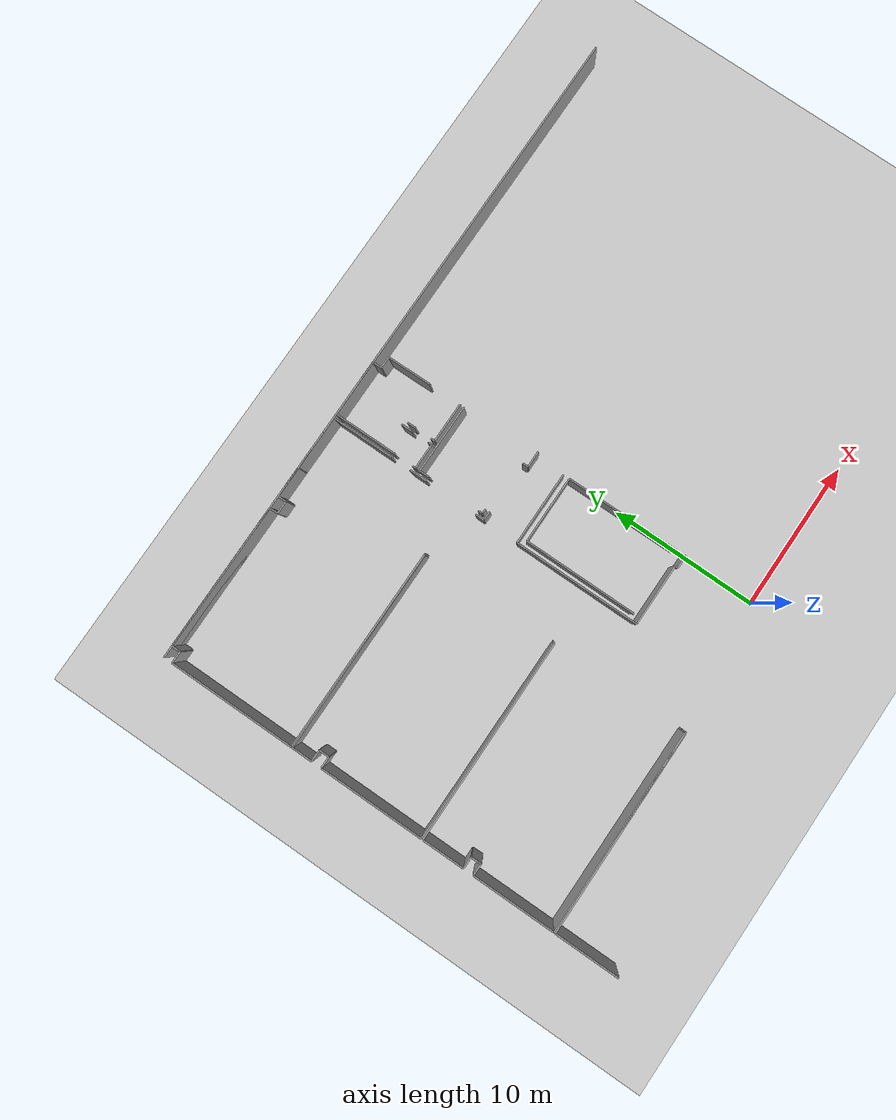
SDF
<sdf version="1.6">
 <world name="default">
  <model name="ground_plane">
   <static>1</static>
   <link name="link">
    <collision name="collision">
     <geometry><plane><normal>0 0 1</normal><size>100 100</size></plane></geometry>
     <surface><friction><ode><mu>100</mu><mu2>50</mu2></ode></friction></surface>
    </collision>
    <visual name="visual">
     <cast_shadows>0</cast_shadows>
     <geometry><plane><normal>0 0 1</normal><size>100 100</size></plane></geometry>
     <material>
      <script><uri>file://media/materials/scripts/gazebo.material</uri><name>Gazebo/Grey</name></script>
     </material>
    </visual>
   </link>
  </model>
  <model name="0510032322">
   <static>1</static>
   <link name="Wall_0">
    <collision name="Wall_0_Collision">
     <geometry><box><size>2.06761739749 0.1 2.5</size></box></geometry>
     <pose>1.03380869874 0 1.25 0 0 0</pose>
    </collision>
    <visual name="Wall_0_Visual">
     <pose>1.03380869874 0 1.25 0 0 0</pose>
     <geometry><box><size>2.06761739749 0.1 2.5</size></box></geometry>
     <material>
      <script><uri>file://media/materials/scripts/gazebo.material</uri><name>Gazebo/Grey</name></script>
      <ambient>1 1 1 1</ambient>
     </material>
    </visual>
    <pose>13.6567595184 -0.00964693487685 0 0 0 3.14159265359</pose>
   </link>
   <link name="Wall_1">
    <collision name="Wall_1_Collision">
     <geometry><box><size>0.5662496906 0.1 2.5</size></box></geometry>
     <pose>0.2831248453 0 1.25 0 0 0</pose>
    </collision>
    <visual name="Wall_1_Visual">
     <pose>0.2831248453 0 1.25 0 0 0</pose>
     <geometry><box><size>0.5662496906 0.1 2.5</size></box></geometry>
     <material>
      <script><uri>file://media/materials/scripts/gazebo.material</uri><name>Gazebo/Grey</name></script>
      <ambient>1 1 1 1</ambient>
     </material>
    </visual>
    <pose>11.5891421209 -0.00964693487685 0 0 0 -1.57079632679</pose>
   </link>
   <link name="Wall_2">
    <collision name="Wall_2_Collision">
     <geometry><box><size>0.859719604222 0.1 2.5</size></box></geometry>
     <pose>0.429859802111 0 1.25 0 0 0</pose>
    </collision>
    <visual name="Wall_2_Visual">
     <pose>0.429859802111 0 1.25 0 0 0</pose>
     <geometry><box><size>0.859719604222 0.1 2.5</size></box></geometry>
     <material>
      <script><uri>file://media/materials/scripts/gazebo.material</uri><name>Gazebo/Grey</name></script>
      <ambient>1 1 1 1</ambient>
     </material>
    </visual>
    <pose>11.5891421209 -0.575896625477 0 0 0 3.14159265359</pose>
   </link>
   <link name="Wall_3">
    <collision name="Wall_3_Collision">
     <geometry><box><size>0.575896625477 0.1 2.5</size></box></geometry>
     <pose>0.287948312738 0 1.25 0 0 0</pose>
    </collision>
    <visual name="Wall_3_Visual">
     <pose>0.287948312738 0 1.25 0 0 0</pose>
     <geometry><box><size>0.575896625477 0.1 2.5</size></box></geometry>
     <material>
      <script><uri>file://media/materials/scripts/gazebo.material</uri><name>Gazebo/Grey</name></script>
      <ambient>1 1 1 1</ambient>
     </material>
    </visual>
    <pose>10.7294225167 -0.575896625477 0 0 0 1.57079632679</pose>
   </link>
   <link name="Wall_4">
    <collision name="Wall_4_Collision">
     <geometry><box><size>9.91514505309 0.1 2.5</size></box></geometry>
     <pose>4.95757252654 0 1.25 0 0 0</pose>
    </collision>
    <visual name="Wall_4_Visual">
     <pose>4.95757252654 0 1.25 0 0 0</pose>
     <geometry><box><size>9.91514505309 0.1 2.5</size></box></geometry>
     <material>
      <script><uri>file://media/materials/scripts/gazebo.material</uri><name>Gazebo/Grey</name></script>
      <ambient>1 1 1 1</ambient>
     </material>
    </visual>
    <pose>10.7294225167 -0.0 0 0 0 3.14159265359</pose>
   </link>
   <link name="Wall_5">
    <collision name="Wall_5_Collision">
     <geometry><box><size>0.592651828158 0.1 2.5</size></box></geometry>
     <pose>0.296325914079 0 1.25 0 0 0</pose>
    </collision>
    <visual name="Wall_5_Visual">
     <pose>0.296325914079 0 1.25 0 0 0</pose>
     <geometry><box><size>0.592651828158 0.1 2.5</size></box></geometry>
     <material>
      <script><uri>file://media/materials/scripts/gazebo.material</uri><name>Gazebo/Grey</name></script>
      <ambient>1 1 1 1</ambient>
     </material>
    </visual>
    <pose>0.814277463618 -0.0 0 0 0 -1.57079632679</pose>
   </link>
   <link name="Wall_6">
    <collision name="Wall_6_Collision">
     <geometry><box><size>0.799680127949 0.1 2.5</size></box></geometry>
     <pose>0.399840063974 0 1.25 0 0 0</pose>
    </collision>
    <visual name="Wall_6_Visual">
     <pose>0.399840063974 0 1.25 0 0 0</pose>
     <geometry><box><size>0.799680127949 0.1 2.5</size></box></geometry>
     <material>
      <script><uri>file://media/materials/scripts/gazebo.material</uri><name>Gazebo/Grey</name></script>
      <ambient>1 1 1 1</ambient>
     </material>
    </visual>
    <pose>0.814277463618 -0.592651828158 0 0 0 3.14159265359</pose>
   </link>
   <link name="Wall_7">
    <collision name="Wall_7_Collision">
     <geometry><box><size>8.6489848505 0.1 2.5</size></box></geometry>
     <pose>4.32449242525 0 1.25 0 0 0</pose>
    </collision>
    <visual name="Wall_7_Visual">
     <pose>4.32449242525 0 1.25 0 0 0</pose>
     <geometry><box><size>8.6489848505 0.1 2.5</size></box></geometry>
     <material>
      <script><uri>file://media/materials/scripts/gazebo.material</uri><name>Gazebo/Grey</name></script>
      <ambient>1 1 1 1</ambient>
     </material>
    </visual>
    <pose>0.0145973356689 -0.592651828158 0 0 0 -1.57079632679</pose>
   </link>
   <link name="Wall_8">
    <collision name="Wall_8_Collision">
     <geometry><box><size>13.6421790487 0.1 2.5</size></box></geometry>
     <pose>6.82108952436 0 1.25 0 0 0</pose>
    </collision>
    <visual name="Wall_8_Visual">
     <pose>6.82108952436 0 1.25 0 0 0</pose>
     <geometry><box><size>13.6421790487 0.1 2.5</size></box></geometry>
     <material>
      <script><uri>file://media/materials/scripts/gazebo.material</uri><name>Gazebo/Grey</name></script>
      <ambient>1 1 1 1</ambient>
     </material>
    </visual>
    <pose>0.0145973356689 -9.24163667866 0 0 0 -0.0015724574153</pose>
   </link>
   <link name="Wall_9">
    <collision name="Wall_9_Collision">
     <geometry><box><size>13.6278187138 0.1 2.5</size></box></geometry>
     <pose>6.81390935689 0 1.25 0 0 0</pose>
    </collision>
    <visual name="Wall_9_Visual">
     <pose>6.81390935689 0 1.25 0 0 0</pose>
     <geometry><box><size>13.6278187138 0.1 2.5</size></box></geometry>
     <material>
      <script><uri>file://media/materials/scripts/gazebo.material</uri><name>Gazebo/Grey</name></script>
      <ambient>1 1 1 1</ambient>
     </material>
    </visual>
    <pose>13.6424160495 -9.29507562055 0 0 0 3.14159265359</pose>
   </link>
   <link name="Wall_10">
    <collision name="Wall_10_Collision">
     <geometry><box><size>1.4079447586 0.1 2.5</size></box></geometry>
     <pose>0.703972379302 0 1.25 0 0 0</pose>
    </collision>
    <visual name="Wall_10_Visual">
     <pose>0.703972379302 0 1.25 0 0 0</pose>
     <geometry><box><size>1.4079447586 0.1 2.5</size></box></geometry>
     <material>
      <script><uri>file://media/materials/scripts/gazebo.material</uri><name>Gazebo/Grey</name></script>
      <ambient>1 1 1 1</ambient>
     </material>
    </visual>
    <pose>0.0145973356689 -9.29507562055 0 0 0 -1.57079632679</pose>
   </link>
   <link name="Wall_11">
    <collision name="Wall_11_Collision">
     <geometry><box><size>0.779116924659 0.1 2.5</size></box></geometry>
     <pose>0.389558462329 0 1.25 0 0 0</pose>
    </collision>
    <visual name="Wall_11_Visual">
     <pose>0.389558462329 0 1.25 0 0 0</pose>
     <geometry><box><size>0.779116924659 0.1 2.5</size></box></geometry>
     <material>
      <script><uri>file://media/materials/scripts/gazebo.material</uri><name>Gazebo/Grey</name></script>
      <ambient>1 1 1 1</ambient>
     </material>
    </visual>
    <pose>0.0145973356689 -10.7030203791 0 0 0 0.0</pose>
   </link>
   <link name="Wall_12">
    <collision name="Wall_12_Collision">
     <geometry><box><size>0.682393709183 0.1 2.5</size></box></geometry>
     <pose>0.341196854591 0 1.25 0 0 0</pose>
    </collision>
    <visual name="Wall_12_Visual">
     <pose>0.341196854591 0 1.25 0 0 0</pose>
     <geometry><box><size>0.682393709183 0.1 2.5</size></box></geometry>
     <material>
      <script><uri>file://media/materials/scripts/gazebo.material</uri><name>Gazebo/Grey</name></script>
      <ambient>1 1 1 1</ambient>
     </material>
    </visual>
    <pose>0.793714260328 -10.7030203791 0 0 0 -1.57079632679</pose>
   </link>
   <link name="Wall_13">
    <collision name="Wall_13_Collision">
     <geometry><box><size>0.782544125207 0.1 2.5</size></box></geometry>
     <pose>0.391272062604 0 1.25 0 0 0</pose>
    </collision>
    <visual name="Wall_13_Visual">
     <pose>0.391272062604 0 1.25 0 0 0</pose>
     <geometry><box><size>0.782544125207 0.1 2.5</size></box></geometry>
     <material>
      <script><uri>file://media/materials/scripts/gazebo.material</uri><name>Gazebo/Grey</name></script>
      <ambient>1 1 1 1</ambient>
     </material>
    </visual>
    <pose>0.793714260328 -11.3854140883 0 0 0 3.14159265359</pose>
   </link>
   <link name="Wall_14">
    <collision name="Wall_14_Collision">
     <geometry><box><size>7.13923954228 0.1 2.5</size></box></geometry>
     <pose>3.56961977114 0 1.25 0 0 0</pose>
    </collision>
    <visual name="Wall_14_Visual">
     <pose>3.56961977114 0 1.25 0 0 0</pose>
     <geometry><box><size>7.13923954228 0.1 2.5</size></box></geometry>
     <material>
      <script><uri>file://media/materials/scripts/gazebo.material</uri><name>Gazebo/Grey</name></script>
      <ambient>1 1 1 1</ambient>
     </material>
    </visual>
    <pose>0.0111701351206 -11.3854140883 0 0 0 -1.57079632679</pose>
   </link>
   <link name="Wall_15">
    <collision name="Wall_15_Collision">
     <geometry><box><size>13.6312729796 0.1 2.5</size></box></geometry>
     <pose>6.81563648982 0 1.25 0 0 0</pose>
    </collision>
    <visual name="Wall_15_Visual">
     <pose>6.81563648982 0 1.25 0 0 0</pose>
     <geometry><box><size>13.6312729796 0.1 2.5</size></box></geometry>
     <material>
      <script><uri>file://media/materials/scripts/gazebo.material</uri><name>Gazebo/Grey</name></script>
      <ambient>1 1 1 1</ambient>
     </material>
    </visual>
    <pose>0.0111701351206 -18.5246536306 0 0 0 -0.00199275267235</pose>
   </link>
   <link name="Wall_16">
    <collision name="Wall_16_Collision">
     <geometry><box><size>13.6482549837 0.1 2.5</size></box></geometry>
     <pose>6.82412749186 0 1.25 0 0 0</pose>
    </collision>
    <visual name="Wall_16_Visual">
     <pose>6.82412749186 0 1.25 0 0 0</pose>
     <geometry><box><size>13.6482549837 0.1 2.5</size></box></geometry>
     <material>
      <script><uri>file://media/materials/scripts/gazebo.material</uri><name>Gazebo/Grey</name></script>
      <ambient>1 1 1 1</ambient>
     </material>
    </visual>
    <pose>13.6576480519 -18.6180765789 0 0 0 3.14159265359</pose>
   </link>
   <link name="Wall_17">
    <collision name="Wall_17_Collision">
     <geometry><box><size>2.87415192653 0.1 2.5</size></box></geometry>
     <pose>1.43707596327 0 1.25 0 0 0</pose>
    </collision>
    <visual name="Wall_17_Visual">
     <pose>1.43707596327 0 1.25 0 0 0</pose>
     <geometry><box><size>2.87415192653 0.1 2.5</size></box></geometry>
     <material>
      <script><uri>file://media/materials/scripts/gazebo.material</uri><name>Gazebo/Grey</name></script>
      <ambient>1 1 1 1</ambient>
     </material>
    </visual>
    <pose>0.00939306816956 -18.6180765789 0 0 0 -1.57079632679</pose>
   </link>
   <link name="Wall_18">
    <collision name="Wall_18_Collision">
     <geometry><box><size>0.779624658073 0.1 2.5</size></box></geometry>
     <pose>0.389812329037 0 1.25 0 0 0</pose>
    </collision>
    <visual name="Wall_18_Visual">
     <pose>0.389812329037 0 1.25 0 0 0</pose>
     <geometry><box><size>0.779624658073 0.1 2.5</size></box></geometry>
     <material>
      <script><uri>file://media/materials/scripts/gazebo.material</uri><name>Gazebo/Grey</name></script>
      <ambient>1 1 1 1</ambient>
     </material>
    </visual>
    <pose>0.00939306816956 -21.4922285054 0 0 0 0.0</pose>
   </link>
   <link name="Wall_19">
    <collision name="Wall_19_Collision">
     <geometry><box><size>0.691913710706 0.1 2.5</size></box></geometry>
     <pose>0.345956855353 0 1.25 0 0 0</pose>
    </collision>
    <visual name="Wall_19_Visual">
     <pose>0.345956855353 0 1.25 0 0 0</pose>
     <geometry><box><size>0.691913710706 0.1 2.5</size></box></geometry>
     <material>
      <script><uri>file://media/materials/scripts/gazebo.material</uri><name>Gazebo/Grey</name></script>
      <ambient>1 1 1 1</ambient>
     </material>
    </visual>
    <pose>0.789017726243 -21.4922285054 0 0 0 -1.57079632679</pose>
   </link>
   <link name="Wall_20">
    <collision name="Wall_20_Collision">
     <geometry><box><size>0.782671058561 0.1 2.5</size></box></geometry>
     <pose>0.39133552928 0 1.25 0 0 0</pose>
    </collision>
    <visual name="Wall_20_Visual">
     <pose>0.39133552928 0 1.25 0 0 0</pose>
     <geometry><box><size>0.782671058561 0.1 2.5</size></box></geometry>
     <material>
      <script><uri>file://media/materials/scripts/gazebo.material</uri><name>Gazebo/Grey</name></script>
      <ambient>1 1 1 1</ambient>
     </material>
    </visual>
    <pose>0.789017726243 -22.1841422161 0 0 0 3.14159265359</pose>
   </link>
   <link name="Wall_21">
    <collision name="Wall_21_Collision">
     <geometry><box><size>5.64041050247 0.1 2.5</size></box></geometry>
     <pose>2.82020525123 0 1.25 0 0 0</pose>
    </collision>
    <visual name="Wall_21_Visual">
     <pose>2.82020525123 0 1.25 0 0 0</pose>
     <geometry><box><size>5.64041050247 0.1 2.5</size></box></geometry>
     <material>
      <script><uri>file://media/materials/scripts/gazebo.material</uri><name>Gazebo/Grey</name></script>
      <ambient>1 1 1 1</ambient>
     </material>
    </visual>
    <pose>0.00634666768213 -22.1841422161 0 0 0 -1.57079632679</pose>
   </link>
   <link name="Wall_22">
    <collision name="Wall_22_Collision">
     <geometry><box><size>13.6513412769 0.1 2.5</size></box></geometry>
     <pose>6.82567063846 0 1.25 0 0 0</pose>
    </collision>
    <visual name="Wall_22_Visual">
     <pose>6.82567063846 0 1.25 0 0 0</pose>
     <geometry><box><size>13.6513412769 0.1 2.5</size></box></geometry>
     <material>
      <script><uri>file://media/materials/scripts/gazebo.material</uri><name>Gazebo/Grey</name></script>
      <ambient>1 1 1 1</ambient>
     </material>
    </visual>
    <pose>0.00634666768213 -27.8245527186 0 0 0 -0.00241754296703</pose>
   </link>
   <link name="Wall_23">
    <collision name="Wall_23_Collision">
     <geometry><box><size>13.6599328523 0.1 2.5</size></box></geometry>
     <pose>6.82996642613 0 1.25 0 0 0</pose>
    </collision>
    <visual name="Wall_23_Visual">
     <pose>6.82996642613 0 1.25 0 0 0</pose>
     <geometry><box><size>13.6599328523 0.1 2.5</size></box></geometry>
     <material>
      <script><uri>file://media/materials/scripts/gazebo.material</uri><name>Gazebo/Grey</name></script>
      <ambient>1 1 1 1</ambient>
     </material>
    </visual>
    <pose>13.6599328523 -27.9007127308 0 0 0 3.14159265359</pose>
   </link>
   <link name="Wall_24">
    <collision name="Wall_24_Collision">
     <geometry><box><size>4.39862150378 0.1 2.5</size></box></geometry>
     <pose>2.19931075189 0 1.25 0 0 0</pose>
    </collision>
    <visual name="Wall_24_Visual">
     <pose>2.19931075189 0 1.25 0 0 0</pose>
     <geometry><box><size>4.39862150378 0.1 2.5</size></box></geometry>
     <material>
      <script><uri>file://media/materials/scripts/gazebo.material</uri><name>Gazebo/Grey</name></script>
      <ambient>1 1 1 1</ambient>
     </material>
    </visual>
    <pose>0.0 -27.9007127308 0 0 0 -1.57079632679</pose>
   </link>
   <link name="Wall_57">
    <collision name="Wall_57_Collision">
     <geometry><box><size>8.56432030362 0.1 2.5</size></box></geometry>
     <pose>4.28216015181 0 1.25 0 0 0</pose>
    </collision>
    <visual name="Wall_57_Visual">
     <pose>4.28216015181 0 1.25 0 0 0</pose>
     <geometry><box><size>8.56432030362 0.1 2.5</size></box></geometry>
     <material>
      <script><uri>file://media/materials/scripts/gazebo.material</uri><name>Gazebo/Grey</name></script>
      <ambient>1 1 1 1</ambient>
     </material>
    </visual>
    <pose>17.3497585093 -22.0097357882 0 0 0 1.57079632679</pose>
   </link>
   <link name="Wall_58">
    <collision name="Wall_58_Collision">
     <geometry><box><size>0.60737609718 0.1 2.5</size></box></geometry>
     <pose>0.30368804859 0 1.25 0 0 0</pose>
    </collision>
    <visual name="Wall_58_Visual">
     <pose>0.30368804859 0 1.25 0 0 0</pose>
     <geometry><box><size>0.60737609718 0.1 2.5</size></box></geometry>
     <material>
      <script><uri>file://media/materials/scripts/gazebo.material</uri><name>Gazebo/Grey</name></script>
      <ambient>1 1 1 1</ambient>
     </material>
    </visual>
    <pose>17.3497585093 -11.0284774979 0 0 0 1.57079632679</pose>
   </link>
   <link name="Wall_59">
    <collision name="Wall_59_Collision">
     <geometry><box><size>1.20523219284 0.1 2.5</size></box></geometry>
     <pose>0.602616096419 0 1.25 0 0 0</pose>
    </collision>
    <visual name="Wall_59_Visual">
     <pose>0.602616096419 0 1.25 0 0 0</pose>
     <geometry><box><size>1.20523219284 0.1 2.5</size></box></geometry>
     <material>
      <script><uri>file://media/materials/scripts/gazebo.material</uri><name>Gazebo/Grey</name></script>
      <ambient>1 1 1 1</ambient>
     </material>
    </visual>
    <pose>17.3497585093 -6.83929602762 0 0 0 1.57079632679</pose>
   </link>
   <link name="Wall_60">
    <collision name="Wall_60_Collision">
     <geometry><box><size>4.25353668057 0.1 2.5</size></box></geometry>
     <pose>2.12676834028 0 1.25 0 0 0</pose>
    </collision>
    <visual name="Wall_60_Visual">
     <pose>2.12676834028 0 1.25 0 0 0</pose>
     <geometry><box><size>4.25353668057 0.1 2.5</size></box></geometry>
     <material>
      <script><uri>file://media/materials/scripts/gazebo.material</uri><name>Gazebo/Grey</name></script>
      <ambient>1 1 1 1</ambient>
     </material>
    </visual>
    <pose>17.3497585093 -4.26026414831 0 0 0 1.57079632679</pose>
   </link>
   <link name="Wall_61">
    <collision name="Wall_61_Collision">
     <geometry><box><size>3.64806458369 0.1 2.5</size></box></geometry>
     <pose>1.82403229185 0 1.25 0 0 0</pose>
    </collision>
    <visual name="Wall_61_Visual">
     <pose>1.82403229185 0 1.25 0 0 0</pose>
     <geometry><box><size>3.64806458369 0.1 2.5</size></box></geometry>
     <material>
      <script><uri>file://media/materials/scripts/gazebo.material</uri><name>Gazebo/Grey</name></script>
      <ambient>1 1 1 1</ambient>
     </material>
    </visual>
    <pose>17.3497585093 -0.00672746774306 0 0 0 3.14159265359</pose>
   </link>
   <link name="Wall_62">
    <collision name="Wall_62_Collision">
     <geometry><box><size>0.0757792121247 0.1 2.5</size></box></geometry>
     <pose>0.0378896060623 0 1.25 0 0 0</pose>
    </collision>
    <visual name="Wall_62_Visual">
     <pose>0.0378896060623 0 1.25 0 0 0</pose>
     <geometry><box><size>0.0757792121247 0.1 2.5</size></box></geometry>
     <material>
      <script><uri>file://media/materials/scripts/gazebo.material</uri><name>Gazebo/Grey</name></script>
      <ambient>1 1 1 1</ambient>
     </material>
    </visual>
    <pose>13.7016939256 -9.23313214397 0 0 0 -1.57079632679</pose>
   </link>
   <link name="Wall_63">
    <collision name="Wall_63_Collision">
     <geometry><box><size>0.0943114817565 0.1 2.5</size></box></geometry>
     <pose>0.0471557408783 0 1.25 0 0 0</pose>
    </collision>
    <visual name="Wall_63_Visual">
     <pose>0.0471557408783 0 1.25 0 0 0</pose>
     <geometry><box><size>0.0943114817565 0.1 2.5</size></box></geometry>
     <material>
      <script><uri>file://media/materials/scripts/gazebo.material</uri><name>Gazebo/Grey</name></script>
      <ambient>1 1 1 1</ambient>
     </material>
    </visual>
    <pose>13.7016939256 -18.5240189638 0 0 0 -1.57079632679</pose>
   </link>
   <link name="Wall_64">
    <collision name="Wall_64_Collision">
     <geometry><box><size>0.0882186807817 0.1 2.5</size></box></geometry>
     <pose>0.0441093403908 0 1.25 0 0 0</pose>
    </collision>
    <visual name="Wall_64_Visual">
     <pose>0.0441093403908 0 1.25 0 0 0</pose>
     <geometry><box><size>0.0882186807817 0.1 2.5</size></box></geometry>
     <material>
      <script><uri>file://media/materials/scripts/gazebo.material</uri><name>Gazebo/Grey</name></script>
      <ambient>1 1 1 1</ambient>
     </material>
    </visual>
    <pose>13.7016939256 -27.8235372518 0 0 0 -1.57079632679</pose>
   </link>
   <link name="Wall_66">
    <collision name="Wall_66_Collision">
     <geometry><box><size>0.778355324537 0.1 2.5</size></box></geometry>
     <pose>0.389177662268 0 1.25 0 0 0</pose>
    </collision>
    <visual name="Wall_66_Visual">
     <pose>0.389177662268 0 1.25 0 0 0</pose>
     <geometry><box><size>0.778355324537 0.1 2.5</size></box></geometry>
     <material>
      <script><uri>file://media/materials/scripts/gazebo.material</uri><name>Gazebo/Grey</name></script>
      <ambient>1 1 1 1</ambient>
     </material>
    </visual>
    <pose>19.3410889612 -3.62267791296 0 0 0 -1.57079632679</pose>
   </link>
   <link name="Wall_67">
    <collision name="Wall_67_Collision">
     <geometry><box><size>0.274429910575 0.1 2.5</size></box></geometry>
     <pose>0.137214955288 0 1.25 0 0 0</pose>
    </collision>
    <visual name="Wall_67_Visual">
     <pose>0.137214955288 0 1.25 0 0 0</pose>
     <geometry><box><size>0.274429910575 0.1 2.5</size></box></geometry>
     <material>
      <script><uri>file://media/materials/scripts/gazebo.material</uri><name>Gazebo/Grey</name></script>
      <ambient>1 1 1 1</ambient>
     </material>
    </visual>
    <pose>19.3410889612 -5.56818542424 0 0 0 -1.57079632679</pose>
   </link>
   <link name="Wall_68">
    <collision name="Wall_68_Collision">
     <geometry><box><size>1.71334640747 0.1 2.5</size></box></geometry>
     <pose>0.856673203734 0 1.25 0 0 0</pose>
    </collision>
    <visual name="Wall_68_Visual">
     <pose>0.856673203734 0 1.25 0 0 0</pose>
     <geometry><box><size>1.71334640747 0.1 2.5</size></box></geometry>
     <material>
      <script><uri>file://media/materials/scripts/gazebo.material</uri><name>Gazebo/Grey</name></script>
      <ambient>1 1 1 1</ambient>
     </material>
    </visual>
    <pose>19.3410889612 -5.84261533482 0 0 0 3.14159265359</pose>
   </link>
   <link name="Wall_69">
    <collision name="Wall_69_Collision">
     <geometry><box><size>0.227464569728 0.1 2.5</size></box></geometry>
     <pose>0.113732284864 0 1.25 0 0 0</pose>
    </collision>
    <visual name="Wall_69_Visual">
     <pose>0.113732284864 0 1.25 0 0 0</pose>
     <geometry><box><size>0.227464569728 0.1 2.5</size></box></geometry>
     <material>
      <script><uri>file://media/materials/scripts/gazebo.material</uri><name>Gazebo/Grey</name></script>
      <ambient>1 1 1 1</ambient>
     </material>
    </visual>
    <pose>17.6277425538 -5.84261533482 0 0 0 1.57079632679</pose>
   </link>
   <link name="Wall_70">
    <collision name="Wall_70_Collision">
     <geometry><box><size>4.25099801349 0.1 2.5</size></box></geometry>
     <pose>2.12549900675 0 1.25 0 0 0</pose>
    </collision>
    <visual name="Wall_70_Visual">
     <pose>2.12549900675 0 1.25 0 0 0</pose>
     <geometry><box><size>4.25099801349 0.1 2.5</size></box></geometry>
     <material>
      <script><uri>file://media/materials/scripts/gazebo.material</uri><name>Gazebo/Grey</name></script>
      <ambient>1 1 1 1</ambient>
     </material>
    </visual>
    <pose>17.6277425538 -4.26026414831 0 0 0 1.57079632679</pose>
   </link>
   <link name="Wall_71">
    <collision name="Wall_71_Collision">
     <geometry><box><size>3.87083261933 0.1 2.5</size></box></geometry>
     <pose>1.93541630967 0 1.25 0 0 0</pose>
    </collision>
    <visual name="Wall_71_Visual">
     <pose>1.93541630967 0 1.25 0 0 0</pose>
     <geometry><box><size>3.87083261933 0.1 2.5</size></box></geometry>
     <material>
      <script><uri>file://media/materials/scripts/gazebo.material</uri><name>Gazebo/Grey</name></script>
      <ambient>1 1 1 1</ambient>
     </material>
    </visual>
    <pose>17.6277425538 -0.00926613481592 0 0 0 0.0</pose>
   </link>
   <link name="Wall_72">
    <collision name="Wall_72_Collision">
     <geometry><box><size>0.595952095352 0.1 2.5</size></box></geometry>
     <pose>0.297976047676 0 1.25 0 0 0</pose>
    </collision>
    <visual name="Wall_72_Visual">
     <pose>0.297976047676 0 1.25 0 0 0</pose>
     <geometry><box><size>0.595952095352 0.1 2.5</size></box></geometry>
     <material>
      <script><uri>file://media/materials/scripts/gazebo.material</uri><name>Gazebo/Grey</name></script>
      <ambient>1 1 1 1</ambient>
     </material>
    </visual>
    <pose>21.4985751731 -0.00926613481592 0 0 0 -1.57079632679</pose>
   </link>
   <link name="Wall_73">
    <collision name="Wall_73_Collision">
     <geometry><box><size>0.790794793194 0.1 2.5</size></box></geometry>
     <pose>0.395397396597 0 1.25 0 0 0</pose>
    </collision>
    <visual name="Wall_73_Visual">
     <pose>0.395397396597 0 1.25 0 0 0</pose>
     <geometry><box><size>0.790794793194 0.1 2.5</size></box></geometry>
     <material>
      <script><uri>file://media/materials/scripts/gazebo.material</uri><name>Gazebo/Grey</name></script>
      <ambient>1 1 1 1</ambient>
     </material>
    </visual>
    <pose>21.4985751731 -0.605218230168 0 0 0 0.0</pose>
   </link>
   <link name="Wall_74">
    <collision name="Wall_74_Collision">
     <geometry><box><size>3.01766600918 0.1 2.5</size></box></geometry>
     <pose>1.50883300459 0 1.25 0 0 0</pose>
    </collision>
    <visual name="Wall_74_Visual">
     <pose>1.50883300459 0 1.25 0 0 0</pose>
     <geometry><box><size>3.01766600918 0.1 2.5</size></box></geometry>
     <material>
      <script><uri>file://media/materials/scripts/gazebo.material</uri><name>Gazebo/Grey</name></script>
      <ambient>1 1 1 1</ambient>
     </material>
    </visual>
    <pose>22.2893699663 -0.605218230168 0 0 0 -1.55910242944</pose>
   </link>
   <link name="Wall_77">
    <collision name="Wall_77_Collision">
     <geometry><box><size>0.536547285848 0.1 2.5</size></box></geometry>
     <pose>0.268273642924 0 1.25 0 0 0</pose>
    </collision>
    <visual name="Wall_77_Visual">
     <pose>0.268273642924 0 1.25 0 0 0</pose>
     <geometry><box><size>0.536547285848 0.1 2.5</size></box></geometry>
     <material>
      <script><uri>file://media/materials/scripts/gazebo.material</uri><name>Gazebo/Grey</name></script>
      <ambient>1 1 1 1</ambient>
     </material>
    </visual>
    <pose>19.631385541 -3.87172115281 0 0 0 -1.57079632679</pose>
   </link>
   <link name="Wall_78">
    <collision name="Wall_78_Collision">
     <geometry><box><size>0.275445377405 0.1 2.5</size></box></geometry>
     <pose>0.137722688702 0 1.25 0 0 0</pose>
    </collision>
    <visual name="Wall_78_Visual">
     <pose>0.137722688702 0 1.25 0 0 0</pose>
     <geometry><box><size>0.275445377405 0.1 2.5</size></box></geometry>
     <material>
      <script><uri>file://media/materials/scripts/gazebo.material</uri><name>Gazebo/Grey</name></script>
      <ambient>1 1 1 1</ambient>
     </material>
    </visual>
    <pose>19.631385541 -5.57516675869 0 0 0 -1.57079632679</pose>
   </link>
   <link name="Wall_79">
    <collision name="Wall_79_Collision">
     <geometry><box><size>2.70432655044 0.1 2.5</size></box></geometry>
     <pose>1.35216327522 0 1.25 0 0 0</pose>
    </collision>
    <visual name="Wall_79_Visual">
     <pose>1.35216327522 0 1.25 0 0 0</pose>
     <geometry><box><size>2.70432655044 0.1 2.5</size></box></geometry>
     <material>
      <script><uri>file://media/materials/scripts/gazebo.material</uri><name>Gazebo/Grey</name></script>
      <ambient>1 1 1 1</ambient>
     </material>
    </visual>
    <pose>19.631385541 -5.8506121361 0 0 0 -0.00291010678149</pose>
   </link>
   <link name="Wall_81">
    <collision name="Wall_81_Collision">
     <geometry><box><size>0.305401648864 0.1 2.5</size></box></geometry>
     <pose>0.152700824432 0 1.25 0 0 0</pose>
    </collision>
    <visual name="Wall_81_Visual">
     <pose>0.152700824432 0 1.25 0 0 0</pose>
     <geometry><box><size>0.305401648864 0.1 2.5</size></box></geometry>
     <material>
      <script><uri>file://media/materials/scripts/gazebo.material</uri><name>Gazebo/Grey</name></script>
      <ambient>1 1 1 1</ambient>
     </material>
    </visual>
    <pose>17.9392370036 -10.7221873155 0 0 0 3.14159265359</pose>
   </link>
   <link name="Wall_82">
    <collision name="Wall_82_Collision">
     <geometry><box><size>0.305528582218 0.1 2.5</size></box></geometry>
     <pose>0.152764291109 0 1.25 0 0 0</pose>
    </collision>
    <visual name="Wall_82_Visual">
     <pose>0.152764291109 0 1.25 0 0 0</pose>
     <geometry><box><size>0.305528582218 0.1 2.5</size></box></geometry>
     <material>
      <script><uri>file://media/materials/scripts/gazebo.material</uri><name>Gazebo/Grey</name></script>
      <ambient>1 1 1 1</ambient>
     </material>
    </visual>
    <pose>17.6338353547 -10.7221873155 0 0 0 1.57079632679</pose>
   </link>
   <link name="Wall_83">
    <collision name="Wall_83_Collision">
     <geometry><box><size>0.68785184339 0.1 2.5</size></box></geometry>
     <pose>0.343925921695 0 1.25 0 0 0</pose>
    </collision>
    <visual name="Wall_83_Visual">
     <pose>0.343925921695 0 1.25 0 0 0</pose>
     <geometry><box><size>0.68785184339 0.1 2.5</size></box></geometry>
     <material>
      <script><uri>file://media/materials/scripts/gazebo.material</uri><name>Gazebo/Grey</name></script>
      <ambient>1 1 1 1</ambient>
     </material>
    </visual>
    <pose>17.6338353547 -6.82876055927 0 0 0 1.57079632679</pose>
   </link>
   <link name="Wall_84">
    <collision name="Wall_84_Collision">
     <geometry><box><size>4.68599861643 0.1 2.5</size></box></geometry>
     <pose>2.34299930821 0 1.25 0 0 0</pose>
    </collision>
    <visual name="Wall_84_Visual">
     <pose>2.34299930821 0 1.25 0 0 0</pose>
     <geometry><box><size>4.68599861643 0.1 2.5</size></box></geometry>
     <material>
      <script><uri>file://media/materials/scripts/gazebo.material</uri><name>Gazebo/Grey</name></script>
      <ambient>1 1 1 1</ambient>
     </material>
    </visual>
    <pose>17.6338353547 -6.14090871588 0 0 0 0.0</pose>
   </link>
   <link name="Wall_88">
    <collision name="Wall_88_Collision">
     <geometry><box><size>4.96639439462 0.1 2.5</size></box></geometry>
     <pose>2.48319719731 0 1.25 0 0 0</pose>
    </collision>
    <visual name="Wall_88_Visual">
     <pose>2.48319719731 0 1.25 0 0 0</pose>
     <geometry><box><size>4.96639439462 0.1 2.5</size></box></geometry>
     <material>
      <script><uri>file://media/materials/scripts/gazebo.material</uri><name>Gazebo/Grey</name></script>
      <ambient>1 1 1 1</ambient>
     </material>
    </visual>
    <pose>22.3119641032 -13.4266293483 0 0 0 3.14159265359</pose>
   </link>
   <link name="Wall_89">
    <collision name="Wall_89_Collision">
     <geometry><box><size>0.619815565837 0.1 2.5</size></box></geometry>
     <pose>0.309907782919 0 1.25 0 0 0</pose>
    </collision>
    <visual name="Wall_89_Visual">
     <pose>0.309907782919 0 1.25 0 0 0</pose>
     <geometry><box><size>0.619815565837 0.1 2.5</size></box></geometry>
     <material>
      <script><uri>file://media/materials/scripts/gazebo.material</uri><name>Gazebo/Grey</name></script>
      <ambient>1 1 1 1</ambient>
     </material>
    </visual>
    <pose>17.3455697086 -11.0190844297 0 0 0 0.0</pose>
   </link>
   <link name="Wall_90">
    <collision name="Wall_90_Collision">
     <geometry><box><size>0.372422459588 0.1 2.5</size></box></geometry>
     <pose>0.186211229794 0 1.25 0 0 0</pose>
    </collision>
    <visual name="Wall_90_Visual">
     <pose>0.186211229794 0 1.25 0 0 0</pose>
     <geometry><box><size>0.372422459588 0.1 2.5</size></box></geometry>
     <material>
      <script><uri>file://media/materials/scripts/gazebo.material</uri><name>Gazebo/Grey</name></script>
      <ambient>1 1 1 1</ambient>
     </material>
    </visual>
    <pose>21.4994637066 -11.0190844297 0 0 0 -1.57079632679</pose>
   </link>
   <link name="Wall_91">
    <collision name="Wall_91_Collision">
     <geometry><box><size>1.10762044389 0.1 2.5</size></box></geometry>
     <pose>0.553810221943 0 1.25 0 0 0</pose>
    </collision>
    <visual name="Wall_91_Visual">
     <pose>0.553810221943 0 1.25 0 0 0</pose>
     <geometry><box><size>1.10762044389 0.1 2.5</size></box></geometry>
     <material>
      <script><uri>file://media/materials/scripts/gazebo.material</uri><name>Gazebo/Grey</name></script>
      <ambient>1 1 1 1</ambient>
     </material>
    </visual>
    <pose>21.4994637066 -11.3915068893 0 0 0 0.0</pose>
   </link>
   <link name="Wall_94">
    <collision name="Wall_94_Collision">
     <geometry><box><size>4.10451692339 0.1 2.5</size></box></geometry>
     <pose>2.05225846169 0 1.25 0 0 0</pose>
    </collision>
    <visual name="Wall_94_Visual">
     <pose>2.05225846169 0 1.25 0 0 0</pose>
     <geometry><box><size>4.10451692339 0.1 2.5</size></box></geometry>
     <material>
      <script><uri>file://media/materials/scripts/gazebo.material</uri><name>Gazebo/Grey</name></script>
      <ambient>1 1 1 1</ambient>
     </material>
    </visual>
    <pose>17.3949467832 -21.9983117864 0 0 0 0.0</pose>
   </link>
   <link name="Wall_95">
    <collision name="Wall_95_Collision">
     <geometry><box><size>0.191034697232 0.1 2.5</size></box></geometry>
     <pose>0.0955173486161 0 1.25 0 0 0</pose>
    </collision>
    <visual name="Wall_95_Visual">
     <pose>0.0955173486161 0 1.25 0 0 0</pose>
     <geometry><box><size>0.191034697232 0.1 2.5</size></box></geometry>
     <material>
      <script><uri>file://media/materials/scripts/gazebo.material</uri><name>Gazebo/Grey</name></script>
      <ambient>1 1 1 1</ambient>
     </material>
    </visual>
    <pose>21.4994637066 -21.9983117864 0 0 0 -1.57079632679</pose>
   </link>
   <link name="Wall_96">
    <collision name="Wall_96_Collision">
     <geometry><box><size>0.889802809035 0.1 2.5</size></box></geometry>
     <pose>0.444901404518 0 1.25 0 0 0</pose>
    </collision>
    <visual name="Wall_96_Visual">
     <pose>0.444901404518 0 1.25 0 0 0</pose>
     <geometry><box><size>0.889802809035 0.1 2.5</size></box></geometry>
     <material>
      <script><uri>file://media/materials/scripts/gazebo.material</uri><name>Gazebo/Grey</name></script>
      <ambient>1 1 1 1</ambient>
     </material>
    </visual>
    <pose>21.4994637066 -22.1893464836 0 0 0 0.0</pose>
   </link>
   <link name="Wall_106">
    <collision name="Wall_106_Collision">
     <geometry><box><size>7.68848016349 0.1 2.5</size></box></geometry>
     <pose>3.84424008175 0 1.25 0 0 0</pose>
    </collision>
    <visual name="Wall_106_Visual">
     <pose>3.84424008175 0 1.25 0 0 0</pose>
     <geometry><box><size>7.68848016349 0.1 2.5</size></box></geometry>
     <material>
      <script><uri>file://media/materials/scripts/gazebo.material</uri><name>Gazebo/Grey</name></script>
      <ambient>1 1 1 1</ambient>
     </material>
    </visual>
    <pose>17.7660999092 -21.5430018469 0 0 0 1.57079632679</pose>
   </link>
   <link name="Wall_107">
    <collision name="Wall_107_Collision">
     <geometry><box><size>4.53101299163 0.1 2.5</size></box></geometry>
     <pose>2.26550649581 0 1.25 0 0 0</pose>
    </collision>
    <visual name="Wall_107_Visual">
     <pose>2.26550649581 0 1.25 0 0 0</pose>
     <geometry><box><size>4.53101299163 0.1 2.5</size></box></geometry>
     <material>
      <script><uri>file://media/materials/scripts/gazebo.material</uri><name>Gazebo/Grey</name></script>
      <ambient>1 1 1 1</ambient>
     </material>
    </visual>
    <pose>17.7660999092 -13.8545216834 0 0 0 0.0</pose>
   </link>
   <link name="Wall_108">
    <collision name="Wall_108_Collision">
     <geometry><box><size>7.68857699695 0.1 2.5</size></box></geometry>
     <pose>3.84428849847 0 1.25 0 0 0</pose>
    </collision>
    <visual name="Wall_108_Visual">
     <pose>3.84428849847 0 1.25 0 0 0</pose>
     <geometry><box><size>7.68857699695 0.1 2.5</size></box></geometry>
     <material>
      <script><uri>file://media/materials/scripts/gazebo.material</uri><name>Gazebo/Grey</name></script>
      <ambient>1 1 1 1</ambient>
     </material>
    </visual>
    <pose>22.2971129009 -13.8545216834 0 0 0 -1.5657774655</pose>
   </link>
   <link name="Wall_238">
    <collision name="Wall_238_Collision">
     <geometry><box><size>45.8781566738 0.1 2.5</size></box></geometry>
     <pose>22.9390783369 0 1.25 0 0 0</pose>
    </collision>
    <visual name="Wall_238_Visual">
     <pose>22.9390783369 0 1.25 0 0 0</pose>
     <geometry><box><size>45.8781566738 0.1 2.5</size></box></geometry>
     <material>
      <script><uri>file://media/materials/scripts/gazebo.material</uri><name>Gazebo/Grey</name></script>
      <ambient>1 1 1 1</ambient>
     </material>
    </visual>
   </link>
   <pose>-22.5 27.37072663 0 0 0 0</pose>
  </model>
 </world>
</sdf>
